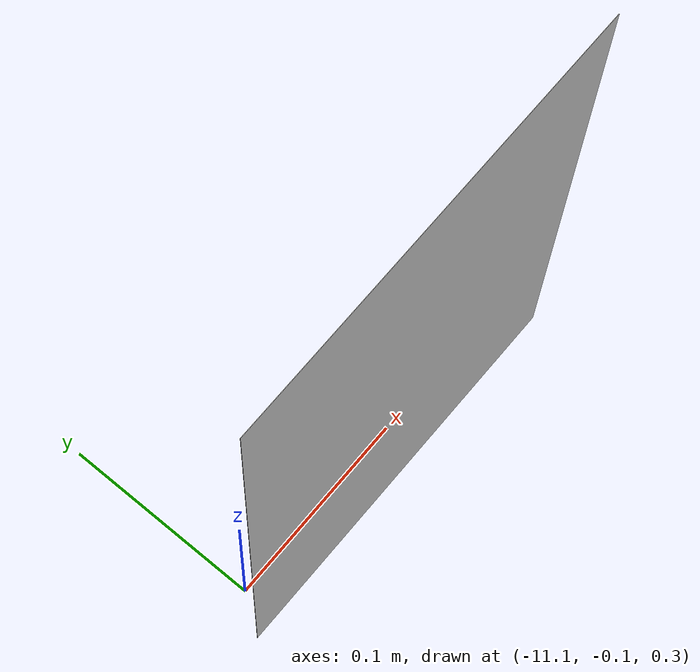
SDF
<?xml version="1.0"?>
<sdf version="1.4">
<model name="green_image">
  <static>true</static>
    <link name="link">
      <collision name="collision">
        <geometry>
          <plane>
            <normal>0 0 1</normal>
            <size>0.21 0.297</size>
          </plane>
        </geometry>
        <surface>
          <friction>
            <ode>
              <mu>100</mu>
              <mu2>50</mu2>
            </ode>
          </friction>
        </surface>
      </collision>
      <visual name="visual">
      <pose>-11 -0.11 0.4 1.57 0 0</pose>
        <cast_shadows>false</cast_shadows>
        <geometry>
          <plane>
            <normal>0 0 1</normal>
            <size>0.21 0.297</size>
          </plane>
        </geometry>
        <material>
          <script>
            <uri>model://green_image/materials/scripts</uri>
            <uri>model://green_image/materials/textures</uri>
            <name>green_image/Image</name>
          </script>
        </material>
      </visual>
    </link>
  </model>
</sdf>
